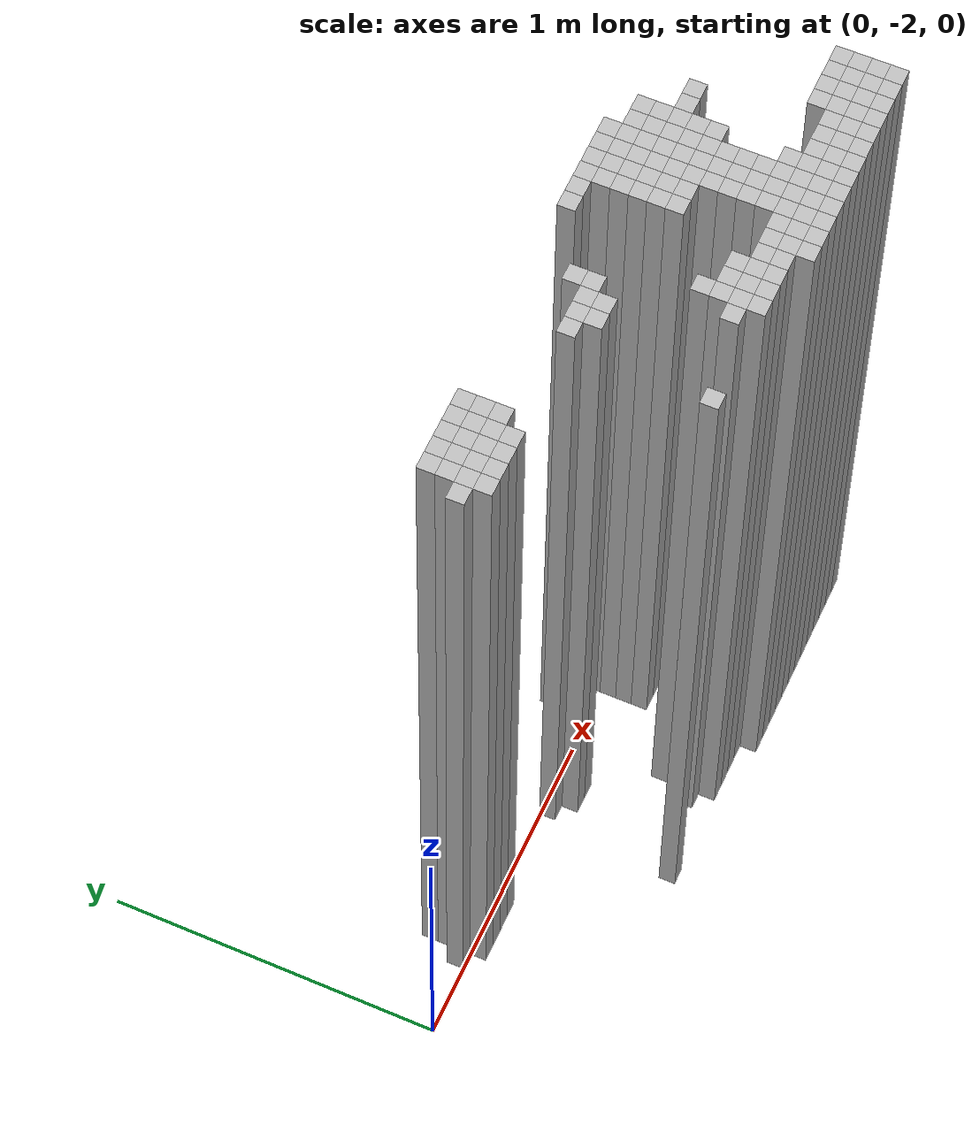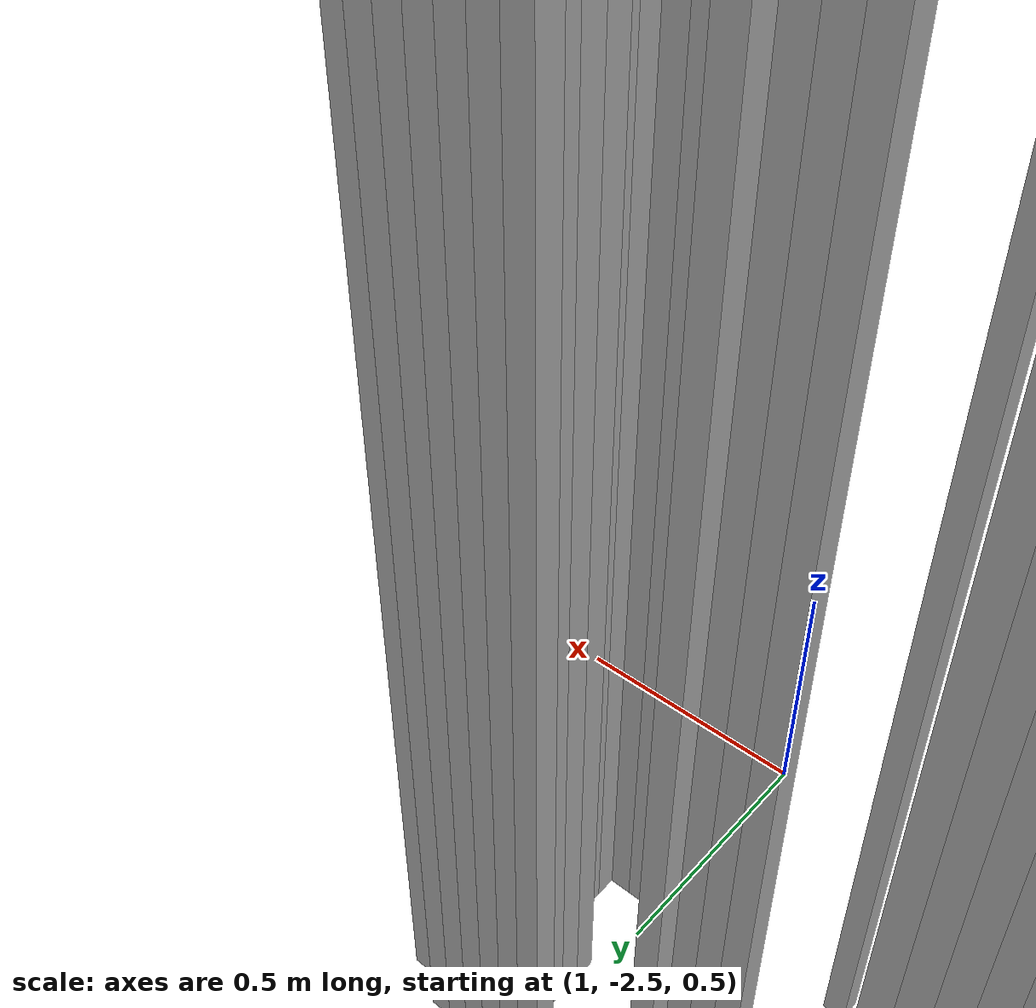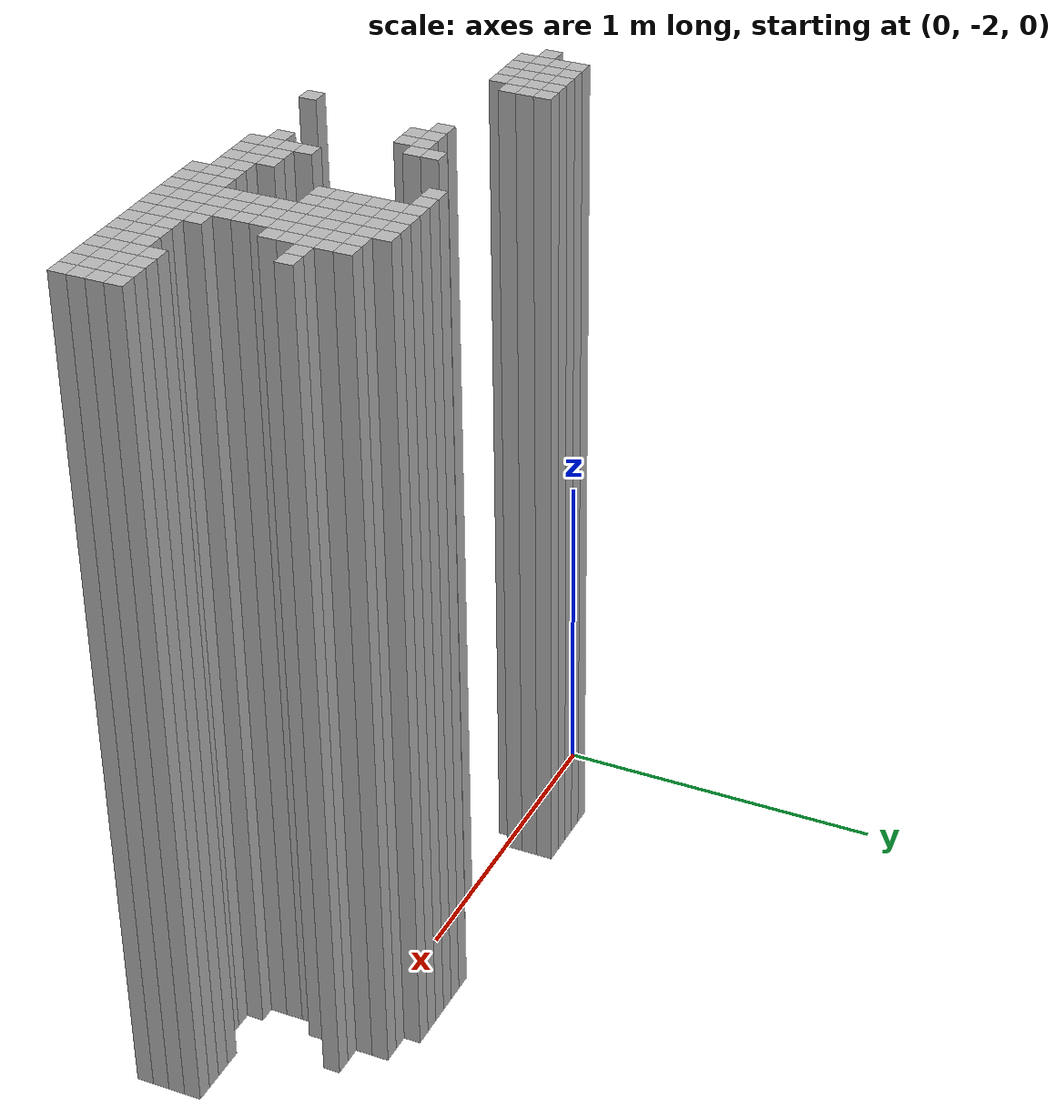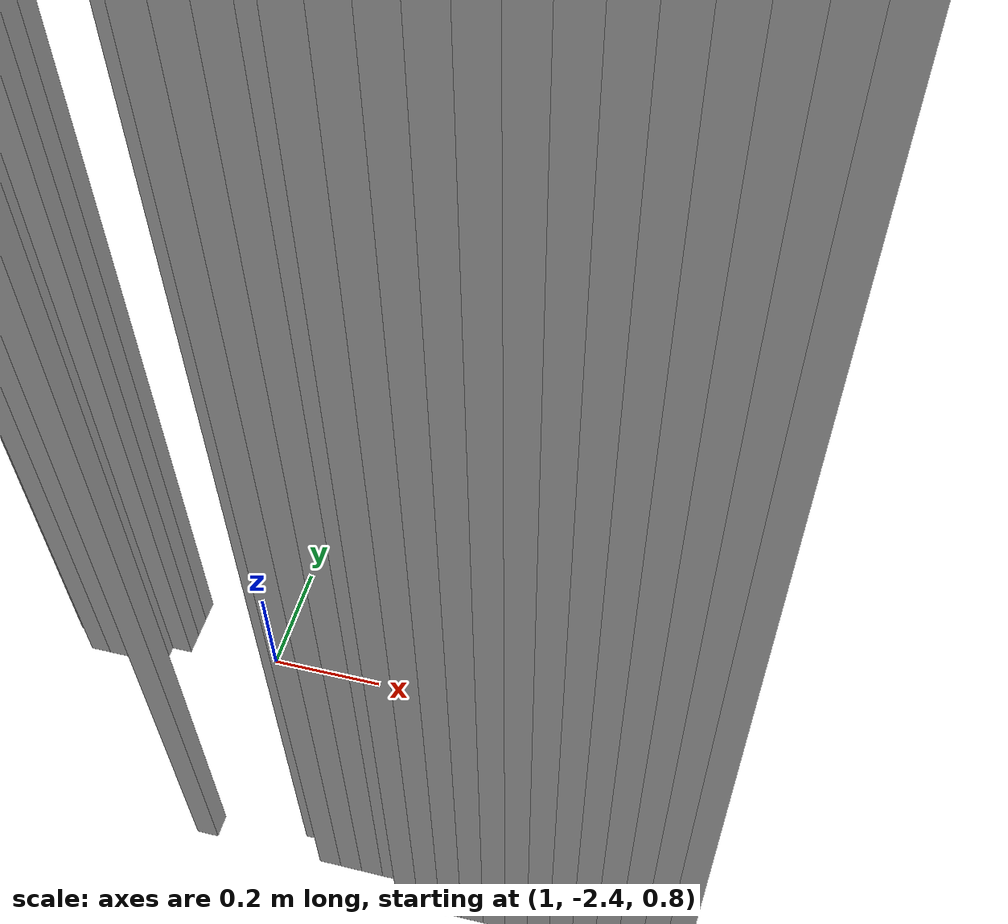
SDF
<sdf version="1.9">
 <world name="map_world">
  <model name="wall_229_191">
   <static>true</static>
   <pose>0.289 -1.870 1.250 0 0 0</pose>
   <link name="link">
    <collision name="collision"><geometry><box><size>0.050 0.050 2.500</size></box></geometry></collision>
    <visual name="visual"><geometry><box><size>0.050 0.050 2.500</size></box></geometry></visual>
   </link>
  </model>
  <model name="wall_230_191">
   <static>true</static>
   <pose>0.339 -1.870 1.250 0 0 0</pose>
   <link name="link">
    <collision name="collision"><geometry><box><size>0.050 0.050 2.500</size></box></geometry></collision>
    <visual name="visual"><geometry><box><size>0.050 0.050 2.500</size></box></geometry></visual>
   </link>
  </model>
  <model name="wall_231_191">
   <static>true</static>
   <pose>0.389 -1.870 1.250 0 0 0</pose>
   <link name="link">
    <collision name="collision"><geometry><box><size>0.050 0.050 2.500</size></box></geometry></collision>
    <visual name="visual"><geometry><box><size>0.050 0.050 2.500</size></box></geometry></visual>
   </link>
  </model>
  <model name="wall_232_191">
   <static>true</static>
   <pose>0.439 -1.870 1.250 0 0 0</pose>
   <link name="link">
    <collision name="collision"><geometry><box><size>0.050 0.050 2.500</size></box></geometry></collision>
    <visual name="visual"><geometry><box><size>0.050 0.050 2.500</size></box></geometry></visual>
   </link>
  </model>
  <model name="wall_233_191">
   <static>true</static>
   <pose>0.489 -1.870 1.250 0 0 0</pose>
   <link name="link">
    <collision name="collision"><geometry><box><size>0.050 0.050 2.500</size></box></geometry></collision>
    <visual name="visual"><geometry><box><size>0.050 0.050 2.500</size></box></geometry></visual>
   </link>
  </model>
  <model name="wall_246_191">
   <static>true</static>
   <pose>1.139 -1.870 1.250 0 0 0</pose>
   <link name="link">
    <collision name="collision"><geometry><box><size>0.050 0.050 2.500</size></box></geometry></collision>
    <visual name="visual"><geometry><box><size>0.050 0.050 2.500</size></box></geometry></visual>
   </link>
  </model>
  <model name="wall_247_191">
   <static>true</static>
   <pose>1.189 -1.870 1.250 0 0 0</pose>
   <link name="link">
    <collision name="collision"><geometry><box><size>0.050 0.050 2.500</size></box></geometry></collision>
    <visual name="visual"><geometry><box><size>0.050 0.050 2.500</size></box></geometry></visual>
   </link>
  </model>
  <model name="wall_248_191">
   <static>true</static>
   <pose>1.239 -1.870 1.250 0 0 0</pose>
   <link name="link">
    <collision name="collision"><geometry><box><size>0.050 0.050 2.500</size></box></geometry></collision>
    <visual name="visual"><geometry><box><size>0.050 0.050 2.500</size></box></geometry></visual>
   </link>
  </model>
  <model name="wall_249_191">
   <static>true</static>
   <pose>1.289 -1.870 1.250 0 0 0</pose>
   <link name="link">
    <collision name="collision"><geometry><box><size>0.050 0.050 2.500</size></box></geometry></collision>
    <visual name="visual"><geometry><box><size>0.050 0.050 2.500</size></box></geometry></visual>
   </link>
  </model>
  <model name="wall_250_191">
   <static>true</static>
   <pose>1.339 -1.870 1.250 0 0 0</pose>
   <link name="link">
    <collision name="collision"><geometry><box><size>0.050 0.050 2.500</size></box></geometry></collision>
    <visual name="visual"><geometry><box><size>0.050 0.050 2.500</size></box></geometry></visual>
   </link>
  </model>
  <model name="wall_251_191">
   <static>true</static>
   <pose>1.389 -1.870 1.250 0 0 0</pose>
   <link name="link">
    <collision name="collision"><geometry><box><size>0.050 0.050 2.500</size></box></geometry></collision>
    <visual name="visual"><geometry><box><size>0.050 0.050 2.500</size></box></geometry></visual>
   </link>
  </model>
  <model name="wall_229_192">
   <static>true</static>
   <pose>0.289 -1.920 1.250 0 0 0</pose>
   <link name="link">
    <collision name="collision"><geometry><box><size>0.050 0.050 2.500</size></box></geometry></collision>
    <visual name="visual"><geometry><box><size>0.050 0.050 2.500</size></box></geometry></visual>
   </link>
  </model>
  <model name="wall_230_192">
   <static>true</static>
   <pose>0.339 -1.920 1.250 0 0 0</pose>
   <link name="link">
    <collision name="collision"><geometry><box><size>0.050 0.050 2.500</size></box></geometry></collision>
    <visual name="visual"><geometry><box><size>0.050 0.050 2.500</size></box></geometry></visual>
   </link>
  </model>
  <model name="wall_231_192">
   <static>true</static>
   <pose>0.389 -1.920 1.250 0 0 0</pose>
   <link name="link">
    <collision name="collision"><geometry><box><size>0.050 0.050 2.500</size></box></geometry></collision>
    <visual name="visual"><geometry><box><size>0.050 0.050 2.500</size></box></geometry></visual>
   </link>
  </model>
  <model name="wall_232_192">
   <static>true</static>
   <pose>0.439 -1.920 1.250 0 0 0</pose>
   <link name="link">
    <collision name="collision"><geometry><box><size>0.050 0.050 2.500</size></box></geometry></collision>
    <visual name="visual"><geometry><box><size>0.050 0.050 2.500</size></box></geometry></visual>
   </link>
  </model>
  <model name="wall_233_192">
   <static>true</static>
   <pose>0.489 -1.920 1.250 0 0 0</pose>
   <link name="link">
    <collision name="collision"><geometry><box><size>0.050 0.050 2.500</size></box></geometry></collision>
    <visual name="visual"><geometry><box><size>0.050 0.050 2.500</size></box></geometry></visual>
   </link>
  </model>
  <model name="wall_248_192">
   <static>true</static>
   <pose>1.239 -1.920 1.250 0 0 0</pose>
   <link name="link">
    <collision name="collision"><geometry><box><size>0.050 0.050 2.500</size></box></geometry></collision>
    <visual name="visual"><geometry><box><size>0.050 0.050 2.500</size></box></geometry></visual>
   </link>
  </model>
  <model name="wall_249_192">
   <static>true</static>
   <pose>1.289 -1.920 1.250 0 0 0</pose>
   <link name="link">
    <collision name="collision"><geometry><box><size>0.050 0.050 2.500</size></box></geometry></collision>
    <visual name="visual"><geometry><box><size>0.050 0.050 2.500</size></box></geometry></visual>
   </link>
  </model>
  <model name="wall_250_192">
   <static>true</static>
   <pose>1.339 -1.920 1.250 0 0 0</pose>
   <link name="link">
    <collision name="collision"><geometry><box><size>0.050 0.050 2.500</size></box></geometry></collision>
    <visual name="visual"><geometry><box><size>0.050 0.050 2.500</size></box></geometry></visual>
   </link>
  </model>
  <model name="wall_251_192">
   <static>true</static>
   <pose>1.389 -1.920 1.250 0 0 0</pose>
   <link name="link">
    <collision name="collision"><geometry><box><size>0.050 0.050 2.500</size></box></geometry></collision>
    <visual name="visual"><geometry><box><size>0.050 0.050 2.500</size></box></geometry></visual>
   </link>
  </model>
  <model name="wall_252_192">
   <static>true</static>
   <pose>1.439 -1.920 1.250 0 0 0</pose>
   <link name="link">
    <collision name="collision"><geometry><box><size>0.050 0.050 2.500</size></box></geometry></collision>
    <visual name="visual"><geometry><box><size>0.050 0.050 2.500</size></box></geometry></visual>
   </link>
  </model>
  <model name="wall_253_192">
   <static>true</static>
   <pose>1.489 -1.920 1.250 0 0 0</pose>
   <link name="link">
    <collision name="collision"><geometry><box><size>0.050 0.050 2.500</size></box></geometry></collision>
    <visual name="visual"><geometry><box><size>0.050 0.050 2.500</size></box></geometry></visual>
   </link>
  </model>
  <model name="wall_228_193">
   <static>true</static>
   <pose>0.239 -1.970 1.250 0 0 0</pose>
   <link name="link">
    <collision name="collision"><geometry><box><size>0.050 0.050 2.500</size></box></geometry></collision>
    <visual name="visual"><geometry><box><size>0.050 0.050 2.500</size></box></geometry></visual>
   </link>
  </model>
  <model name="wall_229_193">
   <static>true</static>
   <pose>0.289 -1.970 1.250 0 0 0</pose>
   <link name="link">
    <collision name="collision"><geometry><box><size>0.050 0.050 2.500</size></box></geometry></collision>
    <visual name="visual"><geometry><box><size>0.050 0.050 2.500</size></box></geometry></visual>
   </link>
  </model>
  <model name="wall_230_193">
   <static>true</static>
   <pose>0.339 -1.970 1.250 0 0 0</pose>
   <link name="link">
    <collision name="collision"><geometry><box><size>0.050 0.050 2.500</size></box></geometry></collision>
    <visual name="visual"><geometry><box><size>0.050 0.050 2.500</size></box></geometry></visual>
   </link>
  </model>
  <model name="wall_231_193">
   <static>true</static>
   <pose>0.389 -1.970 1.250 0 0 0</pose>
   <link name="link">
    <collision name="collision"><geometry><box><size>0.050 0.050 2.500</size></box></geometry></collision>
    <visual name="visual"><geometry><box><size>0.050 0.050 2.500</size></box></geometry></visual>
   </link>
  </model>
  <model name="wall_232_193">
   <static>true</static>
   <pose>0.439 -1.970 1.250 0 0 0</pose>
   <link name="link">
    <collision name="collision"><geometry><box><size>0.050 0.050 2.500</size></box></geometry></collision>
    <visual name="visual"><geometry><box><size>0.050 0.050 2.500</size></box></geometry></visual>
   </link>
  </model>
  <model name="wall_233_193">
   <static>true</static>
   <pose>0.489 -1.970 1.250 0 0 0</pose>
   <link name="link">
    <collision name="collision"><geometry><box><size>0.050 0.050 2.500</size></box></geometry></collision>
    <visual name="visual"><geometry><box><size>0.050 0.050 2.500</size></box></geometry></visual>
   </link>
  </model>
  <model name="wall_242_193">
   <static>true</static>
   <pose>0.939 -1.970 1.250 0 0 0</pose>
   <link name="link">
    <collision name="collision"><geometry><box><size>0.050 0.050 2.500</size></box></geometry></collision>
    <visual name="visual"><geometry><box><size>0.050 0.050 2.500</size></box></geometry></visual>
   </link>
  </model>
  <model name="wall_248_193">
   <static>true</static>
   <pose>1.239 -1.970 1.250 0 0 0</pose>
   <link name="link">
    <collision name="collision"><geometry><box><size>0.050 0.050 2.500</size></box></geometry></collision>
    <visual name="visual"><geometry><box><size>0.050 0.050 2.500</size></box></geometry></visual>
   </link>
  </model>
  <model name="wall_249_193">
   <static>true</static>
   <pose>1.289 -1.970 1.250 0 0 0</pose>
   <link name="link">
    <collision name="collision"><geometry><box><size>0.050 0.050 2.500</size></box></geometry></collision>
    <visual name="visual"><geometry><box><size>0.050 0.050 2.500</size></box></geometry></visual>
   </link>
  </model>
  <model name="wall_250_193">
   <static>true</static>
   <pose>1.339 -1.970 1.250 0 0 0</pose>
   <link name="link">
    <collision name="collision"><geometry><box><size>0.050 0.050 2.500</size></box></geometry></collision>
    <visual name="visual"><geometry><box><size>0.050 0.050 2.500</size></box></geometry></visual>
   </link>
  </model>
  <model name="wall_251_193">
   <static>true</static>
   <pose>1.389 -1.970 1.250 0 0 0</pose>
   <link name="link">
    <collision name="collision"><geometry><box><size>0.050 0.050 2.500</size></box></geometry></collision>
    <visual name="visual"><geometry><box><size>0.050 0.050 2.500</size></box></geometry></visual>
   </link>
  </model>
  <model name="wall_252_193">
   <static>true</static>
   <pose>1.439 -1.970 1.250 0 0 0</pose>
   <link name="link">
    <collision name="collision"><geometry><box><size>0.050 0.050 2.500</size></box></geometry></collision>
    <visual name="visual"><geometry><box><size>0.050 0.050 2.500</size></box></geometry></visual>
   </link>
  </model>
  <model name="wall_253_193">
   <static>true</static>
   <pose>1.489 -1.970 1.250 0 0 0</pose>
   <link name="link">
    <collision name="collision"><geometry><box><size>0.050 0.050 2.500</size></box></geometry></collision>
    <visual name="visual"><geometry><box><size>0.050 0.050 2.500</size></box></geometry></visual>
   </link>
  </model>
  <model name="wall_229_194">
   <static>true</static>
   <pose>0.289 -2.020 1.250 0 0 0</pose>
   <link name="link">
    <collision name="collision"><geometry><box><size>0.050 0.050 2.500</size></box></geometry></collision>
    <visual name="visual"><geometry><box><size>0.050 0.050 2.500</size></box></geometry></visual>
   </link>
  </model>
  <model name="wall_230_194">
   <static>true</static>
   <pose>0.339 -2.020 1.250 0 0 0</pose>
   <link name="link">
    <collision name="collision"><geometry><box><size>0.050 0.050 2.500</size></box></geometry></collision>
    <visual name="visual"><geometry><box><size>0.050 0.050 2.500</size></box></geometry></visual>
   </link>
  </model>
  <model name="wall_231_194">
   <static>true</static>
   <pose>0.389 -2.020 1.250 0 0 0</pose>
   <link name="link">
    <collision name="collision"><geometry><box><size>0.050 0.050 2.500</size></box></geometry></collision>
    <visual name="visual"><geometry><box><size>0.050 0.050 2.500</size></box></geometry></visual>
   </link>
  </model>
  <model name="wall_232_194">
   <static>true</static>
   <pose>0.439 -2.020 1.250 0 0 0</pose>
   <link name="link">
    <collision name="collision"><geometry><box><size>0.050 0.050 2.500</size></box></geometry></collision>
    <visual name="visual"><geometry><box><size>0.050 0.050 2.500</size></box></geometry></visual>
   </link>
  </model>
  <model name="wall_239_194">
   <static>true</static>
   <pose>0.789 -2.020 1.250 0 0 0</pose>
   <link name="link">
    <collision name="collision"><geometry><box><size>0.050 0.050 2.500</size></box></geometry></collision>
    <visual name="visual"><geometry><box><size>0.050 0.050 2.500</size></box></geometry></visual>
   </link>
  </model>
  <model name="wall_240_194">
   <static>true</static>
   <pose>0.839 -2.020 1.250 0 0 0</pose>
   <link name="link">
    <collision name="collision"><geometry><box><size>0.050 0.050 2.500</size></box></geometry></collision>
    <visual name="visual"><geometry><box><size>0.050 0.050 2.500</size></box></geometry></visual>
   </link>
  </model>
  <model name="wall_241_194">
   <static>true</static>
   <pose>0.889 -2.020 1.250 0 0 0</pose>
   <link name="link">
    <collision name="collision"><geometry><box><size>0.050 0.050 2.500</size></box></geometry></collision>
    <visual name="visual"><geometry><box><size>0.050 0.050 2.500</size></box></geometry></visual>
   </link>
  </model>
  <model name="wall_242_194">
   <static>true</static>
   <pose>0.939 -2.020 1.250 0 0 0</pose>
   <link name="link">
    <collision name="collision"><geometry><box><size>0.050 0.050 2.500</size></box></geometry></collision>
    <visual name="visual"><geometry><box><size>0.050 0.050 2.500</size></box></geometry></visual>
   </link>
  </model>
  <model name="wall_248_194">
   <static>true</static>
   <pose>1.239 -2.020 1.250 0 0 0</pose>
   <link name="link">
    <collision name="collision"><geometry><box><size>0.050 0.050 2.500</size></box></geometry></collision>
    <visual name="visual"><geometry><box><size>0.050 0.050 2.500</size></box></geometry></visual>
   </link>
  </model>
  <model name="wall_249_194">
   <static>true</static>
   <pose>1.289 -2.020 1.250 0 0 0</pose>
   <link name="link">
    <collision name="collision"><geometry><box><size>0.050 0.050 2.500</size></box></geometry></collision>
    <visual name="visual"><geometry><box><size>0.050 0.050 2.500</size></box></geometry></visual>
   </link>
  </model>
  <model name="wall_250_194">
   <static>true</static>
   <pose>1.339 -2.020 1.250 0 0 0</pose>
   <link name="link">
    <collision name="collision"><geometry><box><size>0.050 0.050 2.500</size></box></geometry></collision>
    <visual name="visual"><geometry><box><size>0.050 0.050 2.500</size></box></geometry></visual>
   </link>
  </model>
  <model name="wall_251_194">
   <static>true</static>
   <pose>1.389 -2.020 1.250 0 0 0</pose>
   <link name="link">
    <collision name="collision"><geometry><box><size>0.050 0.050 2.500</size></box></geometry></collision>
    <visual name="visual"><geometry><box><size>0.050 0.050 2.500</size></box></geometry></visual>
   </link>
  </model>
  <model name="wall_252_194">
   <static>true</static>
   <pose>1.439 -2.020 1.250 0 0 0</pose>
   <link name="link">
    <collision name="collision"><geometry><box><size>0.050 0.050 2.500</size></box></geometry></collision>
    <visual name="visual"><geometry><box><size>0.050 0.050 2.500</size></box></geometry></visual>
   </link>
  </model>
  <model name="wall_253_194">
   <static>true</static>
   <pose>1.489 -2.020 1.250 0 0 0</pose>
   <link name="link">
    <collision name="collision"><geometry><box><size>0.050 0.050 2.500</size></box></geometry></collision>
    <visual name="visual"><geometry><box><size>0.050 0.050 2.500</size></box></geometry></visual>
   </link>
  </model>
  <model name="wall_254_194">
   <static>true</static>
   <pose>1.539 -2.020 1.250 0 0 0</pose>
   <link name="link">
    <collision name="collision"><geometry><box><size>0.050 0.050 2.500</size></box></geometry></collision>
    <visual name="visual"><geometry><box><size>0.050 0.050 2.500</size></box></geometry></visual>
   </link>
  </model>
  <model name="wall_255_194">
   <static>true</static>
   <pose>1.589 -2.020 1.250 0 0 0</pose>
   <link name="link">
    <collision name="collision"><geometry><box><size>0.050 0.050 2.500</size></box></geometry></collision>
    <visual name="visual"><geometry><box><size>0.050 0.050 2.500</size></box></geometry></visual>
   </link>
  </model>
  <model name="wall_240_195">
   <static>true</static>
   <pose>0.839 -2.070 1.250 0 0 0</pose>
   <link name="link">
    <collision name="collision"><geometry><box><size>0.050 0.050 2.500</size></box></geometry></collision>
    <visual name="visual"><geometry><box><size>0.050 0.050 2.500</size></box></geometry></visual>
   </link>
  </model>
  <model name="wall_241_195">
   <static>true</static>
   <pose>0.889 -2.070 1.250 0 0 0</pose>
   <link name="link">
    <collision name="collision"><geometry><box><size>0.050 0.050 2.500</size></box></geometry></collision>
    <visual name="visual"><geometry><box><size>0.050 0.050 2.500</size></box></geometry></visual>
   </link>
  </model>
  <model name="wall_248_195">
   <static>true</static>
   <pose>1.239 -2.070 1.250 0 0 0</pose>
   <link name="link">
    <collision name="collision"><geometry><box><size>0.050 0.050 2.500</size></box></geometry></collision>
    <visual name="visual"><geometry><box><size>0.050 0.050 2.500</size></box></geometry></visual>
   </link>
  </model>
  <model name="wall_249_195">
   <static>true</static>
   <pose>1.289 -2.070 1.250 0 0 0</pose>
   <link name="link">
    <collision name="collision"><geometry><box><size>0.050 0.050 2.500</size></box></geometry></collision>
    <visual name="visual"><geometry><box><size>0.050 0.050 2.500</size></box></geometry></visual>
   </link>
  </model>
  <model name="wall_250_195">
   <static>true</static>
   <pose>1.339 -2.070 1.250 0 0 0</pose>
   <link name="link">
    <collision name="collision"><geometry><box><size>0.050 0.050 2.500</size></box></geometry></collision>
    <visual name="visual"><geometry><box><size>0.050 0.050 2.500</size></box></geometry></visual>
   </link>
  </model>
  <model name="wall_251_195">
   <static>true</static>
   <pose>1.389 -2.070 1.250 0 0 0</pose>
   <link name="link">
    <collision name="collision"><geometry><box><size>0.050 0.050 2.500</size></box></geometry></collision>
    <visual name="visual"><geometry><box><size>0.050 0.050 2.500</size></box></geometry></visual>
   </link>
  </model>
  <model name="wall_252_195">
   <static>true</static>
   <pose>1.439 -2.070 1.250 0 0 0</pose>
   <link name="link">
    <collision name="collision"><geometry><box><size>0.050 0.050 2.500</size></box></geometry></collision>
    <visual name="visual"><geometry><box><size>0.050 0.050 2.500</size></box></geometry></visual>
   </link>
  </model>
  <model name="wall_253_195">
   <static>true</static>
   <pose>1.489 -2.070 1.250 0 0 0</pose>
   <link name="link">
    <collision name="collision"><geometry><box><size>0.050 0.050 2.500</size></box></geometry></collision>
    <visual name="visual"><geometry><box><size>0.050 0.050 2.500</size></box></geometry></visual>
   </link>
  </model>
  <model name="wall_248_196">
   <static>true</static>
   <pose>1.239 -2.120 1.250 0 0 0</pose>
   <link name="link">
    <collision name="collision"><geometry><box><size>0.050 0.050 2.500</size></box></geometry></collision>
    <visual name="visual"><geometry><box><size>0.050 0.050 2.500</size></box></geometry></visual>
   </link>
  </model>
  <model name="wall_249_196">
   <static>true</static>
   <pose>1.289 -2.120 1.250 0 0 0</pose>
   <link name="link">
    <collision name="collision"><geometry><box><size>0.050 0.050 2.500</size></box></geometry></collision>
    <visual name="visual"><geometry><box><size>0.050 0.050 2.500</size></box></geometry></visual>
   </link>
  </model>
  <model name="wall_250_196">
   <static>true</static>
   <pose>1.339 -2.120 1.250 0 0 0</pose>
   <link name="link">
    <collision name="collision"><geometry><box><size>0.050 0.050 2.500</size></box></geometry></collision>
    <visual name="visual"><geometry><box><size>0.050 0.050 2.500</size></box></geometry></visual>
   </link>
  </model>
  <model name="wall_251_196">
   <static>true</static>
   <pose>1.389 -2.120 1.250 0 0 0</pose>
   <link name="link">
    <collision name="collision"><geometry><box><size>0.050 0.050 2.500</size></box></geometry></collision>
    <visual name="visual"><geometry><box><size>0.050 0.050 2.500</size></box></geometry></visual>
   </link>
  </model>
  <model name="wall_252_196">
   <static>true</static>
   <pose>1.439 -2.120 1.250 0 0 0</pose>
   <link name="link">
    <collision name="collision"><geometry><box><size>0.050 0.050 2.500</size></box></geometry></collision>
    <visual name="visual"><geometry><box><size>0.050 0.050 2.500</size></box></geometry></visual>
   </link>
  </model>
  <model name="wall_253_196">
   <static>true</static>
   <pose>1.489 -2.120 1.250 0 0 0</pose>
   <link name="link">
    <collision name="collision"><geometry><box><size>0.050 0.050 2.500</size></box></geometry></collision>
    <visual name="visual"><geometry><box><size>0.050 0.050 2.500</size></box></geometry></visual>
   </link>
  </model>
  <model name="wall_250_197">
   <static>true</static>
   <pose>1.339 -2.170 1.250 0 0 0</pose>
   <link name="link">
    <collision name="collision"><geometry><box><size>0.050 0.050 2.500</size></box></geometry></collision>
    <visual name="visual"><geometry><box><size>0.050 0.050 2.500</size></box></geometry></visual>
   </link>
  </model>
  <model name="wall_251_197">
   <static>true</static>
   <pose>1.389 -2.170 1.250 0 0 0</pose>
   <link name="link">
    <collision name="collision"><geometry><box><size>0.050 0.050 2.500</size></box></geometry></collision>
    <visual name="visual"><geometry><box><size>0.050 0.050 2.500</size></box></geometry></visual>
   </link>
  </model>
  <model name="wall_252_197">
   <static>true</static>
   <pose>1.439 -2.170 1.250 0 0 0</pose>
   <link name="link">
    <collision name="collision"><geometry><box><size>0.050 0.050 2.500</size></box></geometry></collision>
    <visual name="visual"><geometry><box><size>0.050 0.050 2.500</size></box></geometry></visual>
   </link>
  </model>
  <model name="wall_250_198">
   <static>true</static>
   <pose>1.339 -2.220 1.250 0 0 0</pose>
   <link name="link">
    <collision name="collision"><geometry><box><size>0.050 0.050 2.500</size></box></geometry></collision>
    <visual name="visual"><geometry><box><size>0.050 0.050 2.500</size></box></geometry></visual>
   </link>
  </model>
  <model name="wall_251_198">
   <static>true</static>
   <pose>1.389 -2.220 1.250 0 0 0</pose>
   <link name="link">
    <collision name="collision"><geometry><box><size>0.050 0.050 2.500</size></box></geometry></collision>
    <visual name="visual"><geometry><box><size>0.050 0.050 2.500</size></box></geometry></visual>
   </link>
  </model>
  <model name="wall_252_198">
   <static>true</static>
   <pose>1.439 -2.220 1.250 0 0 0</pose>
   <link name="link">
    <collision name="collision"><geometry><box><size>0.050 0.050 2.500</size></box></geometry></collision>
    <visual name="visual"><geometry><box><size>0.050 0.050 2.500</size></box></geometry></visual>
   </link>
  </model>
  <model name="wall_244_199">
   <static>true</static>
   <pose>1.039 -2.270 1.250 0 0 0</pose>
   <link name="link">
    <collision name="collision"><geometry><box><size>0.050 0.050 2.500</size></box></geometry></collision>
    <visual name="visual"><geometry><box><size>0.050 0.050 2.500</size></box></geometry></visual>
   </link>
  </model>
  <model name="wall_250_199">
   <static>true</static>
   <pose>1.339 -2.270 1.250 0 0 0</pose>
   <link name="link">
    <collision name="collision"><geometry><box><size>0.050 0.050 2.500</size></box></geometry></collision>
    <visual name="visual"><geometry><box><size>0.050 0.050 2.500</size></box></geometry></visual>
   </link>
  </model>
  <model name="wall_251_199">
   <static>true</static>
   <pose>1.389 -2.270 1.250 0 0 0</pose>
   <link name="link">
    <collision name="collision"><geometry><box><size>0.050 0.050 2.500</size></box></geometry></collision>
    <visual name="visual"><geometry><box><size>0.050 0.050 2.500</size></box></geometry></visual>
   </link>
  </model>
  <model name="wall_252_199">
   <static>true</static>
   <pose>1.439 -2.270 1.250 0 0 0</pose>
   <link name="link">
    <collision name="collision"><geometry><box><size>0.050 0.050 2.500</size></box></geometry></collision>
    <visual name="visual"><geometry><box><size>0.050 0.050 2.500</size></box></geometry></visual>
   </link>
  </model>
  <model name="wall_244_200">
   <static>true</static>
   <pose>1.039 -2.320 1.250 0 0 0</pose>
   <link name="link">
    <collision name="collision"><geometry><box><size>0.050 0.050 2.500</size></box></geometry></collision>
    <visual name="visual"><geometry><box><size>0.050 0.050 2.500</size></box></geometry></visual>
   </link>
  </model>
  <model name="wall_245_200">
   <static>true</static>
   <pose>1.089 -2.320 1.250 0 0 0</pose>
   <link name="link">
    <collision name="collision"><geometry><box><size>0.050 0.050 2.500</size></box></geometry></collision>
    <visual name="visual"><geometry><box><size>0.050 0.050 2.500</size></box></geometry></visual>
   </link>
  </model>
  <model name="wall_246_200">
   <static>true</static>
   <pose>1.139 -2.320 1.250 0 0 0</pose>
   <link name="link">
    <collision name="collision"><geometry><box><size>0.050 0.050 2.500</size></box></geometry></collision>
    <visual name="visual"><geometry><box><size>0.050 0.050 2.500</size></box></geometry></visual>
   </link>
  </model>
  <model name="wall_250_200">
   <static>true</static>
   <pose>1.339 -2.320 1.250 0 0 0</pose>
   <link name="link">
    <collision name="collision"><geometry><box><size>0.050 0.050 2.500</size></box></geometry></collision>
    <visual name="visual"><geometry><box><size>0.050 0.050 2.500</size></box></geometry></visual>
   </link>
  </model>
  <model name="wall_251_200">
   <static>true</static>
   <pose>1.389 -2.320 1.250 0 0 0</pose>
   <link name="link">
    <collision name="collision"><geometry><box><size>0.050 0.050 2.500</size></box></geometry></collision>
    <visual name="visual"><geometry><box><size>0.050 0.050 2.500</size></box></geometry></visual>
   </link>
  </model>
  <model name="wall_252_200">
   <static>true</static>
   <pose>1.439 -2.320 1.250 0 0 0</pose>
   <link name="link">
    <collision name="collision"><geometry><box><size>0.050 0.050 2.500</size></box></geometry></collision>
    <visual name="visual"><geometry><box><size>0.050 0.050 2.500</size></box></geometry></visual>
   </link>
  </model>
  <model name="wall_253_200">
   <static>true</static>
   <pose>1.489 -2.320 1.250 0 0 0</pose>
   <link name="link">
    <collision name="collision"><geometry><box><size>0.050 0.050 2.500</size></box></geometry></collision>
    <visual name="visual"><geometry><box><size>0.050 0.050 2.500</size></box></geometry></visual>
   </link>
  </model>
  <model name="wall_257_200">
   <static>true</static>
   <pose>1.689 -2.320 1.250 0 0 0</pose>
   <link name="link">
    <collision name="collision"><geometry><box><size>0.050 0.050 2.500</size></box></geometry></collision>
    <visual name="visual"><geometry><box><size>0.050 0.050 2.500</size></box></geometry></visual>
   </link>
  </model>
  <model name="wall_258_200">
   <static>true</static>
   <pose>1.739 -2.320 1.250 0 0 0</pose>
   <link name="link">
    <collision name="collision"><geometry><box><size>0.050 0.050 2.500</size></box></geometry></collision>
    <visual name="visual"><geometry><box><size>0.050 0.050 2.500</size></box></geometry></visual>
   </link>
  </model>
  <model name="wall_259_200">
   <static>true</static>
   <pose>1.789 -2.320 1.250 0 0 0</pose>
   <link name="link">
    <collision name="collision"><geometry><box><size>0.050 0.050 2.500</size></box></geometry></collision>
    <visual name="visual"><geometry><box><size>0.050 0.050 2.500</size></box></geometry></visual>
   </link>
  </model>
  <model name="wall_260_200">
   <static>true</static>
   <pose>1.839 -2.320 1.250 0 0 0</pose>
   <link name="link">
    <collision name="collision"><geometry><box><size>0.050 0.050 2.500</size></box></geometry></collision>
    <visual name="visual"><geometry><box><size>0.050 0.050 2.500</size></box></geometry></visual>
   </link>
  </model>
  <model name="wall_243_201">
   <static>true</static>
   <pose>0.989 -2.370 1.250 0 0 0</pose>
   <link name="link">
    <collision name="collision"><geometry><box><size>0.050 0.050 2.500</size></box></geometry></collision>
    <visual name="visual"><geometry><box><size>0.050 0.050 2.500</size></box></geometry></visual>
   </link>
  </model>
  <model name="wall_244_201">
   <static>true</static>
   <pose>1.039 -2.370 1.250 0 0 0</pose>
   <link name="link">
    <collision name="collision"><geometry><box><size>0.050 0.050 2.500</size></box></geometry></collision>
    <visual name="visual"><geometry><box><size>0.050 0.050 2.500</size></box></geometry></visual>
   </link>
  </model>
  <model name="wall_245_201">
   <static>true</static>
   <pose>1.089 -2.370 1.250 0 0 0</pose>
   <link name="link">
    <collision name="collision"><geometry><box><size>0.050 0.050 2.500</size></box></geometry></collision>
    <visual name="visual"><geometry><box><size>0.050 0.050 2.500</size></box></geometry></visual>
   </link>
  </model>
  <model name="wall_246_201">
   <static>true</static>
   <pose>1.139 -2.370 1.250 0 0 0</pose>
   <link name="link">
    <collision name="collision"><geometry><box><size>0.050 0.050 2.500</size></box></geometry></collision>
    <visual name="visual"><geometry><box><size>0.050 0.050 2.500</size></box></geometry></visual>
   </link>
  </model>
  <model name="wall_247_201">
   <static>true</static>
   <pose>1.189 -2.370 1.250 0 0 0</pose>
   <link name="link">
    <collision name="collision"><geometry><box><size>0.050 0.050 2.500</size></box></geometry></collision>
    <visual name="visual"><geometry><box><size>0.050 0.050 2.500</size></box></geometry></visual>
   </link>
  </model>
  <model name="wall_248_201">
   <static>true</static>
   <pose>1.239 -2.370 1.250 0 0 0</pose>
   <link name="link">
    <collision name="collision"><geometry><box><size>0.050 0.050 2.500</size></box></geometry></collision>
    <visual name="visual"><geometry><box><size>0.050 0.050 2.500</size></box></geometry></visual>
   </link>
  </model>
  <model name="wall_249_201">
   <static>true</static>
   <pose>1.289 -2.370 1.250 0 0 0</pose>
   <link name="link">
    <collision name="collision"><geometry><box><size>0.050 0.050 2.500</size></box></geometry></collision>
    <visual name="visual"><geometry><box><size>0.050 0.050 2.500</size></box></geometry></visual>
   </link>
  </model>
  <model name="wall_250_201">
   <static>true</static>
   <pose>1.339 -2.370 1.250 0 0 0</pose>
   <link name="link">
    <collision name="collision"><geometry><box><size>0.050 0.050 2.500</size></box></geometry></collision>
    <visual name="visual"><geometry><box><size>0.050 0.050 2.500</size></box></geometry></visual>
   </link>
  </model>
  <model name="wall_251_201">
   <static>true</static>
   <pose>1.389 -2.370 1.250 0 0 0</pose>
   <link name="link">
    <collision name="collision"><geometry><box><size>0.050 0.050 2.500</size></box></geometry></collision>
    <visual name="visual"><geometry><box><size>0.050 0.050 2.500</size></box></geometry></visual>
   </link>
  </model>
  <model name="wall_252_201">
   <static>true</static>
   <pose>1.439 -2.370 1.250 0 0 0</pose>
   <link name="link">
    <collision name="collision"><geometry><box><size>0.050 0.050 2.500</size></box></geometry></collision>
    <visual name="visual"><geometry><box><size>0.050 0.050 2.500</size></box></geometry></visual>
   </link>
  </model>
  <model name="wall_253_201">
   <static>true</static>
   <pose>1.489 -2.370 1.250 0 0 0</pose>
   <link name="link">
    <collision name="collision"><geometry><box><size>0.050 0.050 2.500</size></box></geometry></collision>
    <visual name="visual"><geometry><box><size>0.050 0.050 2.500</size></box></geometry></visual>
   </link>
  </model>
  <model name="wall_254_201">
   <static>true</static>
   <pose>1.539 -2.370 1.250 0 0 0</pose>
   <link name="link">
    <collision name="collision"><geometry><box><size>0.050 0.050 2.500</size></box></geometry></collision>
    <visual name="visual"><geometry><box><size>0.050 0.050 2.500</size></box></geometry></visual>
   </link>
  </model>
  <model name="wall_255_201">
   <static>true</static>
   <pose>1.589 -2.370 1.250 0 0 0</pose>
   <link name="link">
    <collision name="collision"><geometry><box><size>0.050 0.050 2.500</size></box></geometry></collision>
    <visual name="visual"><geometry><box><size>0.050 0.050 2.500</size></box></geometry></visual>
   </link>
  </model>
  <model name="wall_256_201">
   <static>true</static>
   <pose>1.639 -2.370 1.250 0 0 0</pose>
   <link name="link">
    <collision name="collision"><geometry><box><size>0.050 0.050 2.500</size></box></geometry></collision>
    <visual name="visual"><geometry><box><size>0.050 0.050 2.500</size></box></geometry></visual>
   </link>
  </model>
  <model name="wall_257_201">
   <static>true</static>
   <pose>1.689 -2.370 1.250 0 0 0</pose>
   <link name="link">
    <collision name="collision"><geometry><box><size>0.050 0.050 2.500</size></box></geometry></collision>
    <visual name="visual"><geometry><box><size>0.050 0.050 2.500</size></box></geometry></visual>
   </link>
  </model>
  <model name="wall_258_201">
   <static>true</static>
   <pose>1.739 -2.370 1.250 0 0 0</pose>
   <link name="link">
    <collision name="collision"><geometry><box><size>0.050 0.050 2.500</size></box></geometry></collision>
    <visual name="visual"><geometry><box><size>0.050 0.050 2.500</size></box></geometry></visual>
   </link>
  </model>
  <model name="wall_259_201">
   <static>true</static>
   <pose>1.789 -2.370 1.250 0 0 0</pose>
   <link name="link">
    <collision name="collision"><geometry><box><size>0.050 0.050 2.500</size></box></geometry></collision>
    <visual name="visual"><geometry><box><size>0.050 0.050 2.500</size></box></geometry></visual>
   </link>
  </model>
  <model name="wall_260_201">
   <static>true</static>
   <pose>1.839 -2.370 1.250 0 0 0</pose>
   <link name="link">
    <collision name="collision"><geometry><box><size>0.050 0.050 2.500</size></box></geometry></collision>
    <visual name="visual"><geometry><box><size>0.050 0.050 2.500</size></box></geometry></visual>
   </link>
  </model>
  <model name="wall_238_202">
   <static>true</static>
   <pose>0.739 -2.420 1.250 0 0 0</pose>
   <link name="link">
    <collision name="collision"><geometry><box><size>0.050 0.050 2.500</size></box></geometry></collision>
    <visual name="visual"><geometry><box><size>0.050 0.050 2.500</size></box></geometry></visual>
   </link>
  </model>
  <model name="wall_244_202">
   <static>true</static>
   <pose>1.039 -2.420 1.250 0 0 0</pose>
   <link name="link">
    <collision name="collision"><geometry><box><size>0.050 0.050 2.500</size></box></geometry></collision>
    <visual name="visual"><geometry><box><size>0.050 0.050 2.500</size></box></geometry></visual>
   </link>
  </model>
  <model name="wall_245_202">
   <static>true</static>
   <pose>1.089 -2.420 1.250 0 0 0</pose>
   <link name="link">
    <collision name="collision"><geometry><box><size>0.050 0.050 2.500</size></box></geometry></collision>
    <visual name="visual"><geometry><box><size>0.050 0.050 2.500</size></box></geometry></visual>
   </link>
  </model>
  <model name="wall_246_202">
   <static>true</static>
   <pose>1.139 -2.420 1.250 0 0 0</pose>
   <link name="link">
    <collision name="collision"><geometry><box><size>0.050 0.050 2.500</size></box></geometry></collision>
    <visual name="visual"><geometry><box><size>0.050 0.050 2.500</size></box></geometry></visual>
   </link>
  </model>
  <model name="wall_247_202">
   <static>true</static>
   <pose>1.189 -2.420 1.250 0 0 0</pose>
   <link name="link">
    <collision name="collision"><geometry><box><size>0.050 0.050 2.500</size></box></geometry></collision>
    <visual name="visual"><geometry><box><size>0.050 0.050 2.500</size></box></geometry></visual>
   </link>
  </model>
  <model name="wall_248_202">
   <static>true</static>
   <pose>1.239 -2.420 1.250 0 0 0</pose>
   <link name="link">
    <collision name="collision"><geometry><box><size>0.050 0.050 2.500</size></box></geometry></collision>
    <visual name="visual"><geometry><box><size>0.050 0.050 2.500</size></box></geometry></visual>
   </link>
  </model>
  <model name="wall_249_202">
   <static>true</static>
   <pose>1.289 -2.420 1.250 0 0 0</pose>
   <link name="link">
    <collision name="collision"><geometry><box><size>0.050 0.050 2.500</size></box></geometry></collision>
    <visual name="visual"><geometry><box><size>0.050 0.050 2.500</size></box></geometry></visual>
   </link>
  </model>
  <model name="wall_250_202">
   <static>true</static>
   <pose>1.339 -2.420 1.250 0 0 0</pose>
   <link name="link">
    <collision name="collision"><geometry><box><size>0.050 0.050 2.500</size></box></geometry></collision>
    <visual name="visual"><geometry><box><size>0.050 0.050 2.500</size></box></geometry></visual>
   </link>
  </model>
  <model name="wall_251_202">
   <static>true</static>
   <pose>1.389 -2.420 1.250 0 0 0</pose>
   <link name="link">
    <collision name="collision"><geometry><box><size>0.050 0.050 2.500</size></box></geometry></collision>
    <visual name="visual"><geometry><box><size>0.050 0.050 2.500</size></box></geometry></visual>
   </link>
  </model>
  <model name="wall_252_202">
   <static>true</static>
   <pose>1.439 -2.420 1.250 0 0 0</pose>
   <link name="link">
    <collision name="collision"><geometry><box><size>0.050 0.050 2.500</size></box></geometry></collision>
    <visual name="visual"><geometry><box><size>0.050 0.050 2.500</size></box></geometry></visual>
   </link>
  </model>
  <model name="wall_253_202">
   <static>true</static>
   <pose>1.489 -2.420 1.250 0 0 0</pose>
   <link name="link">
    <collision name="collision"><geometry><box><size>0.050 0.050 2.500</size></box></geometry></collision>
    <visual name="visual"><geometry><box><size>0.050 0.050 2.500</size></box></geometry></visual>
   </link>
  </model>
  <model name="wall_254_202">
   <static>true</static>
   <pose>1.539 -2.420 1.250 0 0 0</pose>
   <link name="link">
    <collision name="collision"><geometry><box><size>0.050 0.050 2.500</size></box></geometry></collision>
    <visual name="visual"><geometry><box><size>0.050 0.050 2.500</size></box></geometry></visual>
   </link>
  </model>
  <model name="wall_255_202">
   <static>true</static>
   <pose>1.589 -2.420 1.250 0 0 0</pose>
   <link name="link">
    <collision name="collision"><geometry><box><size>0.050 0.050 2.500</size></box></geometry></collision>
    <visual name="visual"><geometry><box><size>0.050 0.050 2.500</size></box></geometry></visual>
   </link>
  </model>
  <model name="wall_256_202">
   <static>true</static>
   <pose>1.639 -2.420 1.250 0 0 0</pose>
   <link name="link">
    <collision name="collision"><geometry><box><size>0.050 0.050 2.500</size></box></geometry></collision>
    <visual name="visual"><geometry><box><size>0.050 0.050 2.500</size></box></geometry></visual>
   </link>
  </model>
  <model name="wall_257_202">
   <static>true</static>
   <pose>1.689 -2.420 1.250 0 0 0</pose>
   <link name="link">
    <collision name="collision"><geometry><box><size>0.050 0.050 2.500</size></box></geometry></collision>
    <visual name="visual"><geometry><box><size>0.050 0.050 2.500</size></box></geometry></visual>
   </link>
  </model>
  <model name="wall_258_202">
   <static>true</static>
   <pose>1.739 -2.420 1.250 0 0 0</pose>
   <link name="link">
    <collision name="collision"><geometry><box><size>0.050 0.050 2.500</size></box></geometry></collision>
    <visual name="visual"><geometry><box><size>0.050 0.050 2.500</size></box></geometry></visual>
   </link>
  </model>
  <model name="wall_259_202">
   <static>true</static>
   <pose>1.789 -2.420 1.250 0 0 0</pose>
   <link name="link">
    <collision name="collision"><geometry><box><size>0.050 0.050 2.500</size></box></geometry></collision>
    <visual name="visual"><geometry><box><size>0.050 0.050 2.500</size></box></geometry></visual>
   </link>
  </model>
  <model name="wall_260_202">
   <static>true</static>
   <pose>1.839 -2.420 1.250 0 0 0</pose>
   <link name="link">
    <collision name="collision"><geometry><box><size>0.050 0.050 2.500</size></box></geometry></collision>
    <visual name="visual"><geometry><box><size>0.050 0.050 2.500</size></box></geometry></visual>
   </link>
  </model>
  <model name="wall_248_203">
   <static>true</static>
   <pose>1.239 -2.470 1.250 0 0 0</pose>
   <link name="link">
    <collision name="collision"><geometry><box><size>0.050 0.050 2.500</size></box></geometry></collision>
    <visual name="visual"><geometry><box><size>0.050 0.050 2.500</size></box></geometry></visual>
   </link>
  </model>
  <model name="wall_249_203">
   <static>true</static>
   <pose>1.289 -2.470 1.250 0 0 0</pose>
   <link name="link">
    <collision name="collision"><geometry><box><size>0.050 0.050 2.500</size></box></geometry></collision>
    <visual name="visual"><geometry><box><size>0.050 0.050 2.500</size></box></geometry></visual>
   </link>
  </model>
  <model name="wall_250_203">
   <static>true</static>
   <pose>1.339 -2.470 1.250 0 0 0</pose>
   <link name="link">
    <collision name="collision"><geometry><box><size>0.050 0.050 2.500</size></box></geometry></collision>
    <visual name="visual"><geometry><box><size>0.050 0.050 2.500</size></box></geometry></visual>
   </link>
  </model>
  <model name="wall_251_203">
   <static>true</static>
   <pose>1.389 -2.470 1.250 0 0 0</pose>
   <link name="link">
    <collision name="collision"><geometry><box><size>0.050 0.050 2.500</size></box></geometry></collision>
    <visual name="visual"><geometry><box><size>0.050 0.050 2.500</size></box></geometry></visual>
   </link>
  </model>
  <model name="wall_252_203">
   <static>true</static>
   <pose>1.439 -2.470 1.250 0 0 0</pose>
   <link name="link">
    <collision name="collision"><geometry><box><size>0.050 0.050 2.500</size></box></geometry></collision>
    <visual name="visual"><geometry><box><size>0.050 0.050 2.500</size></box></geometry></visual>
   </link>
  </model>
  <model name="wall_253_203">
   <static>true</static>
   <pose>1.489 -2.470 1.250 0 0 0</pose>
   <link name="link">
    <collision name="collision"><geometry><box><size>0.050 0.050 2.500</size></box></geometry></collision>
    <visual name="visual"><geometry><box><size>0.050 0.050 2.500</size></box></geometry></visual>
   </link>
  </model>
  <model name="wall_254_203">
   <static>true</static>
   <pose>1.539 -2.470 1.250 0 0 0</pose>
   <link name="link">
    <collision name="collision"><geometry><box><size>0.050 0.050 2.500</size></box></geometry></collision>
    <visual name="visual"><geometry><box><size>0.050 0.050 2.500</size></box></geometry></visual>
   </link>
  </model>
  <model name="wall_255_203">
   <static>true</static>
   <pose>1.589 -2.470 1.250 0 0 0</pose>
   <link name="link">
    <collision name="collision"><geometry><box><size>0.050 0.050 2.500</size></box></geometry></collision>
    <visual name="visual"><geometry><box><size>0.050 0.050 2.500</size></box></geometry></visual>
   </link>
  </model>
  <model name="wall_256_203">
   <static>true</static>
   <pose>1.639 -2.470 1.250 0 0 0</pose>
   <link name="link">
    <collision name="collision"><geometry><box><size>0.050 0.050 2.500</size></box></geometry></collision>
    <visual name="visual"><geometry><box><size>0.050 0.050 2.500</size></box></geometry></visual>
   </link>
  </model>
  <model name="wall_257_203">
   <static>true</static>
   <pose>1.689 -2.470 1.250 0 0 0</pose>
   <link name="link">
    <collision name="collision"><geometry><box><size>0.050 0.050 2.500</size></box></geometry></collision>
    <visual name="visual"><geometry><box><size>0.050 0.050 2.500</size></box></geometry></visual>
   </link>
  </model>
  <model name="wall_258_203">
   <static>true</static>
   <pose>1.739 -2.470 1.250 0 0 0</pose>
   <link name="link">
    <collision name="collision"><geometry><box><size>0.050 0.050 2.500</size></box></geometry></collision>
    <visual name="visual"><geometry><box><size>0.050 0.050 2.500</size></box></geometry></visual>
   </link>
  </model>
  <model name="wall_259_203">
   <static>true</static>
   <pose>1.789 -2.470 1.250 0 0 0</pose>
   <link name="link">
    <collision name="collision"><geometry><box><size>0.050 0.050 2.500</size></box></geometry></collision>
    <visual name="visual"><geometry><box><size>0.050 0.050 2.500</size></box></geometry></visual>
   </link>
  </model>
  <model name="wall_260_203">
   <static>true</static>
   <pose>1.839 -2.470 1.250 0 0 0</pose>
   <link name="link">
    <collision name="collision"><geometry><box><size>0.050 0.050 2.500</size></box></geometry></collision>
    <visual name="visual"><geometry><box><size>0.050 0.050 2.500</size></box></geometry></visual>
   </link>
  </model>
 </world>
</sdf>
